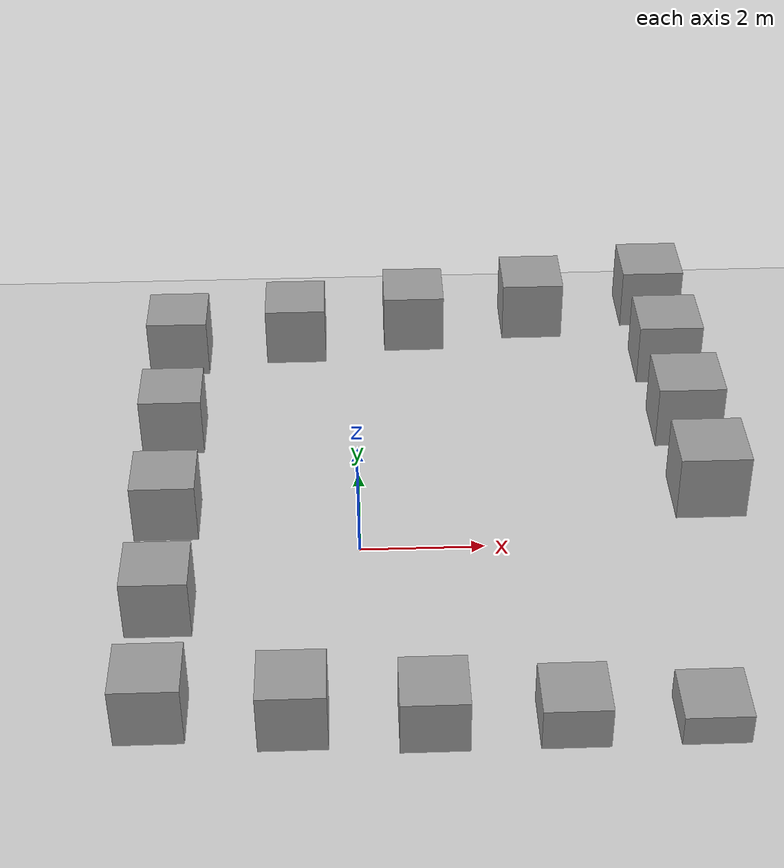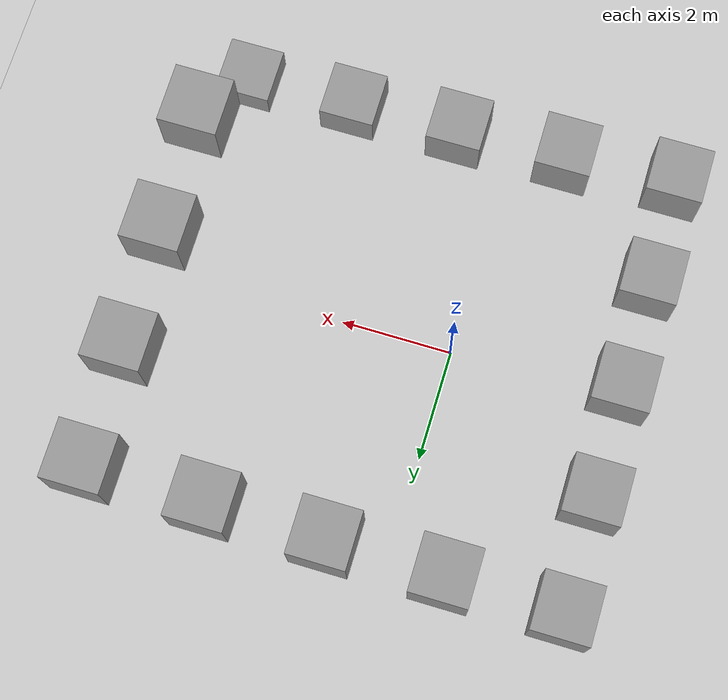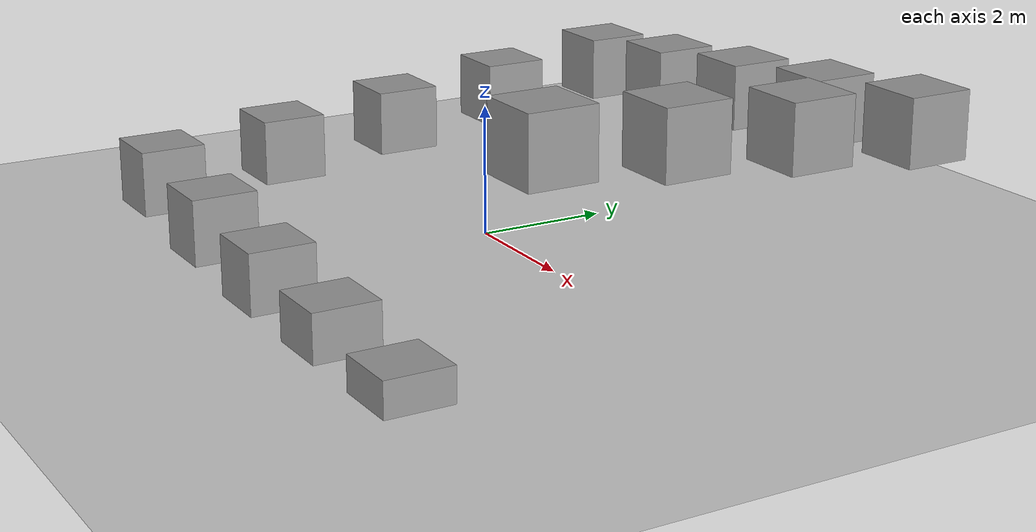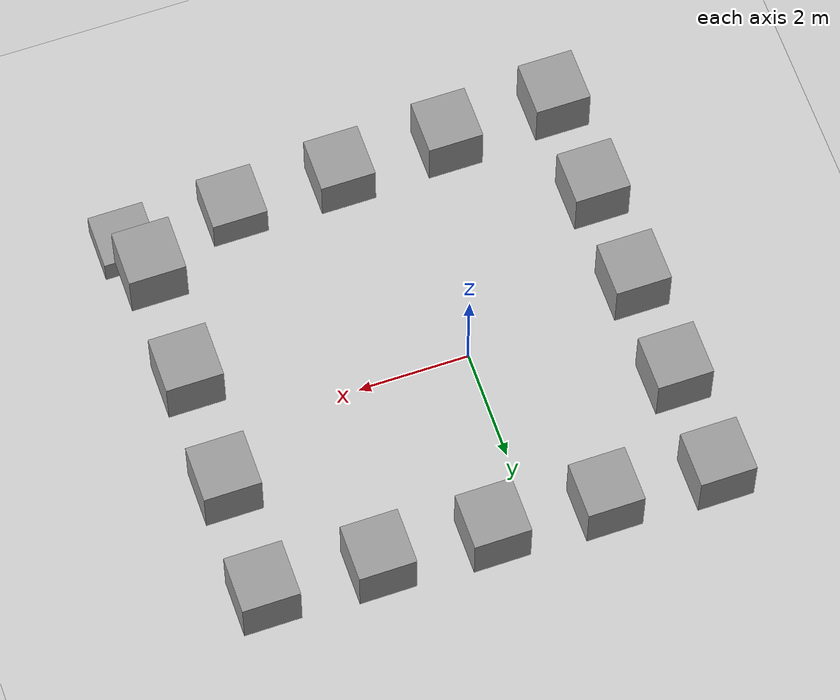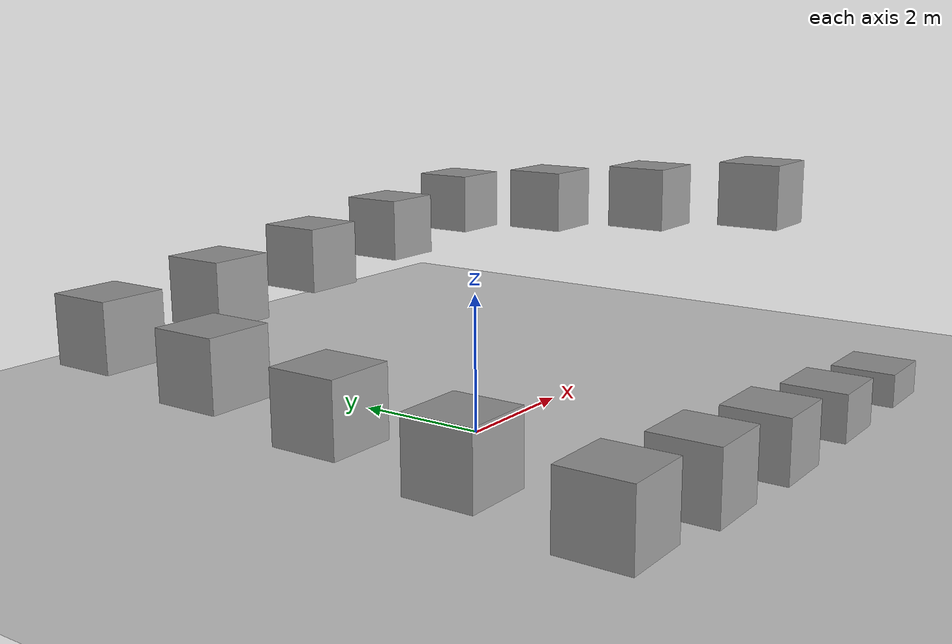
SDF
<sdf version="1.7">
 <world name="default">
  <light name="sun" type="directional">
   <pose>0 0 10 0 -0 0</pose>
   <diffuse>0.8 0.8 0.8 1</diffuse>
   <specular>0.2 0.2 0.2 1</specular>
   <attenuation>
    <range>1000</range>
    <constant>0.9</constant>
    <linear>0.01</linear>
    <quadratic>0.001</quadratic>
   </attenuation>
   <direction>-0.5 0.1 -0.9</direction>
   <spot><inner_angle>0</inner_angle><outer_angle>0</outer_angle><falloff>0</falloff></spot>
  </light>
  <model name="ground_plane">
   <static>1</static>
   <link name="link">
    <collision name="collision">
     <geometry><plane><normal>0 0 1</normal><size>100 100</size></plane></geometry>
     <surface><friction><ode><mu>100</mu><mu2>50</mu2></ode></friction></surface>
    </collision>
    <visual name="visual">
     <cast_shadows>0</cast_shadows>
     <geometry><plane><normal>0 0 1</normal><size>100 100</size></plane></geometry>
     <material>
      <script><uri>file://media/materials/scripts/gazebo.material</uri><name>Gazebo/Grey</name></script>
     </material>
    </visual>
   </link>
  </model>
  <gravity>0 0 -9.8</gravity>
  <magnetic_field>6e-06 2.3e-05 -4.2e-05</magnetic_field>
  <atmosphere type="adiabatic"/>
  <physics type="ode">
   <max_step_size>0.001</max_step_size>
   <real_time_factor>1</real_time_factor>
   <real_time_update_rate>1000</real_time_update_rate>
  </physics>
  <scene><ambient>0.4 0.4 0.4 1</ambient><background>0.7 0.7 0.7 1</background><shadows>1</shadows></scene>
  <spherical_coordinates>
   <surface_model>EARTH_WGS84</surface_model>
   <latitude_deg>0</latitude_deg>
   <longitude_deg>0</longitude_deg>
   <elevation>0</elevation>
   <heading_deg>0</heading_deg>
  </spherical_coordinates>
  <model name="unit_box">
   <pose>1 4 2 0 -0 0</pose>
   <link name="link">
    <inertial>
     <mass>1</mass>
     <inertia>
      <ixx>0.166667</ixx>
      <ixy>0</ixy>
      <ixz>0</ixz>
      <iyy>0.166667</iyy>
      <iyz>0</iyz>
      <izz>0.166667</izz>
     </inertia>
    </inertial>
    <collision name="collision"><geometry><box><size>1 1 1</size></box></geometry></collision>
    <visual name="visual">
     <geometry><box><size>1 1 1</size></box></geometry>
     <material>
      <script><name>Gazebo/Grey</name><uri>file://media/materials/scripts/gazebo.material</uri></script>
     </material>
    </visual>
   </link>
  </model>
  <model name="unit_box_clone">
   <pose>3 4 2.2 0 -0 0</pose>
   <link name="link">
    <inertial>
     <mass>1</mass>
     <inertia>
      <ixx>0.166667</ixx>
      <ixy>0</ixy>
      <ixz>0</ixz>
      <iyy>0.166667</iyy>
      <iyz>0</iyz>
      <izz>0.166667</izz>
     </inertia>
    </inertial>
    <collision name="collision"><geometry><box><size>1 1 1</size></box></geometry></collision>
    <visual name="visual">
     <geometry><box><size>1 1 1</size></box></geometry>
     <material>
      <script><name>Gazebo/Grey</name><uri>file://media/materials/scripts/gazebo.material</uri></script>
     </material>
    </visual>
   </link>
  </model>
  <model name="unit_box_clone_clone">
   <pose>-1 4 1.8 0 -0 0</pose>
   <link name="link">
    <inertial>
     <mass>1</mass>
     <inertia>
      <ixx>0.166667</ixx>
      <ixy>0</ixy>
      <ixz>0</ixz>
      <iyy>0.166667</iyy>
      <iyz>0</iyz>
      <izz>0.166667</izz>
     </inertia>
    </inertial>
    <collision name="collision"><geometry><box><size>1 1 1</size></box></geometry></collision>
    <visual name="visual">
     <geometry><box><size>1 1 1</size></box></geometry>
     <material>
      <script><name>Gazebo/Grey</name><uri>file://media/materials/scripts/gazebo.material</uri></script>
     </material>
    </visual>
   </link>
  </model>
  <model name="unit_box_clone_clone_clone">
   <pose>-3 4 1.6 0 -0 0</pose>
   <link name="link">
    <inertial>
     <mass>1</mass>
     <inertia>
      <ixx>0.166667</ixx>
      <ixy>0</ixy>
      <ixz>0</ixz>
      <iyy>0.166667</iyy>
      <iyz>0</iyz>
      <izz>0.166667</izz>
     </inertia>
    </inertial>
    <collision name="collision"><geometry><box><size>1 1 1</size></box></geometry></collision>
    <visual name="visual">
     <geometry><box><size>1 1 1</size></box></geometry>
     <material>
      <script><name>Gazebo/Grey</name><uri>file://media/materials/scripts/gazebo.material</uri></script>
     </material>
    </visual>
   </link>
  </model>
  <model name="unit_box_clone_clone_clone_clone">
   <pose>-3 2 1.4 0 -0 0</pose>
   <link name="link">
    <inertial>
     <mass>1</mass>
     <inertia>
      <ixx>0.166667</ixx>
      <ixy>0</ixy>
      <ixz>0</ixz>
      <iyy>0.166667</iyy>
      <iyz>0</iyz>
      <izz>0.166667</izz>
     </inertia>
    </inertial>
    <collision name="collision"><geometry><box><size>1 1 1</size></box></geometry></collision>
    <visual name="visual">
     <geometry><box><size>1 1 1</size></box></geometry>
     <material>
      <script><name>Gazebo/Grey</name><uri>file://media/materials/scripts/gazebo.material</uri></script>
     </material>
    </visual>
   </link>
  </model>
  <model name="unit_box_clone_clone_clone_clone_clone">
   <pose>-3 0 1.2 0 -0 0</pose>
   <link name="link">
    <inertial>
     <mass>1</mass>
     <inertia>
      <ixx>0.166667</ixx>
      <ixy>0</ixy>
      <ixz>0</ixz>
      <iyy>0.166667</iyy>
      <iyz>0</iyz>
      <izz>0.166667</izz>
     </inertia>
    </inertial>
    <collision name="collision"><geometry><box><size>1 1 1</size></box></geometry></collision>
    <visual name="visual">
     <geometry><box><size>1 1 1</size></box></geometry>
     <material>
      <script><name>Gazebo/Grey</name><uri>file://media/materials/scripts/gazebo.material</uri></script>
     </material>
    </visual>
   </link>
  </model>
  <model name="unit_box_clone_clone_clone_clone_clone_clone">
   <pose>-3 -2 1 0 -0 0</pose>
   <link name="link">
    <inertial>
     <mass>1</mass>
     <inertia>
      <ixx>0.166667</ixx>
      <ixy>0</ixy>
      <ixz>0</ixz>
      <iyy>0.166667</iyy>
      <iyz>0</iyz>
      <izz>0.166667</izz>
     </inertia>
    </inertial>
    <collision name="collision"><geometry><box><size>1 1 1</size></box></geometry></collision>
    <visual name="visual">
     <geometry><box><size>1 1 1</size></box></geometry>
     <material>
      <script><name>Gazebo/Grey</name><uri>file://media/materials/scripts/gazebo.material</uri></script>
     </material>
    </visual>
   </link>
  </model>
  <model name="unit_box_clone_clone_clone_clone_clone_clone_0">
   <pose>-3 -4 0.8 0 -0 0</pose>
   <link name="link">
    <inertial>
     <mass>1</mass>
     <inertia>
      <ixx>0.166667</ixx>
      <ixy>0</ixy>
      <ixz>0</ixz>
      <iyy>0.166667</iyy>
      <iyz>0</iyz>
      <izz>0.166667</izz>
     </inertia>
    </inertial>
    <collision name="collision"><geometry><box><size>1 1 1</size></box></geometry></collision>
    <visual name="visual">
     <geometry><box><size>1 1 1</size></box></geometry>
     <material>
      <script><name>Gazebo/Grey</name><uri>file://media/materials/scripts/gazebo.material</uri></script>
     </material>
    </visual>
   </link>
  </model>
  <model name="unit_box_clone_clone_clone_clone_clone_clone_1">
   <pose>-1 -4 0.6 0 -0 0</pose>
   <link name="link">
    <inertial>
     <mass>1</mass>
     <inertia>
      <ixx>0.166667</ixx>
      <ixy>0</ixy>
      <ixz>0</ixz>
      <iyy>0.166667</iyy>
      <iyz>0</iyz>
      <izz>0.166667</izz>
     </inertia>
    </inertial>
    <collision name="collision"><geometry><box><size>1 1 1</size></box></geometry></collision>
    <visual name="visual">
     <geometry><box><size>1 1 1</size></box></geometry>
     <material>
      <script><name>Gazebo/Grey</name><uri>file://media/materials/scripts/gazebo.material</uri></script>
     </material>
    </visual>
   </link>
  </model>
  <model name="unit_box_clone_clone_clone_clone_clone_clone_2">
   <pose>1 -4 0.4 0 -0 0</pose>
   <link name="link">
    <inertial>
     <mass>1</mass>
     <inertia>
      <ixx>0.166667</ixx>
      <ixy>0</ixy>
      <ixz>0</ixz>
      <iyy>0.166667</iyy>
      <iyz>0</iyz>
      <izz>0.166667</izz>
     </inertia>
    </inertial>
    <collision name="collision"><geometry><box><size>1 1 1</size></box></geometry></collision>
    <visual name="visual">
     <geometry><box><size>1 1 1</size></box></geometry>
     <material>
      <script><name>Gazebo/Grey</name><uri>file://media/materials/scripts/gazebo.material</uri></script>
     </material>
    </visual>
   </link>
  </model>
  <model name="unit_box_clone_clone_clone_clone_clone_clone_3_clone">
   <pose>5 -4 0 0 -0 0</pose>
   <link name="link">
    <inertial>
     <mass>1</mass>
     <inertia>
      <ixx>0.166667</ixx>
      <ixy>0</ixy>
      <ixz>0</ixz>
      <iyy>0.166667</iyy>
      <iyz>0</iyz>
      <izz>0.166667</izz>
     </inertia>
    </inertial>
    <collision name="collision"><geometry><box><size>1 1 1</size></box></geometry></collision>
    <visual name="visual">
     <geometry><box><size>1 1 1</size></box></geometry>
     <material>
      <script><name>Gazebo/Grey</name><uri>file://media/materials/scripts/gazebo.material</uri></script>
     </material>
    </visual>
   </link>
  </model>
  <model name="unit_box_clone_clone_clone_clone_clone_clone_3_clone_0">
   <pose>5 -2 3 0 -0 0</pose>
   <link name="link">
    <inertial>
     <mass>1</mass>
     <inertia>
      <ixx>0.166667</ixx>
      <ixy>0</ixy>
      <ixz>0</ixz>
      <iyy>0.166667</iyy>
      <iyz>0</iyz>
      <izz>0.166667</izz>
     </inertia>
    </inertial>
    <collision name="collision"><geometry><box><size>1 1 1</size></box></geometry></collision>
    <visual name="visual">
     <geometry><box><size>1 1 1</size></box></geometry>
     <material>
      <script><name>Gazebo/Grey</name><uri>file://media/materials/scripts/gazebo.material</uri></script>
     </material>
    </visual>
   </link>
  </model>
  <model name="unit_box_clone_clone_clone_clone_clone_clone_3_clone_1">
   <pose>5 0 2.8 0 -0 0</pose>
   <link name="link">
    <inertial>
     <mass>1</mass>
     <inertia>
      <ixx>0.166667</ixx>
      <ixy>0</ixy>
      <ixz>0</ixz>
      <iyy>0.166667</iyy>
      <iyz>0</iyz>
      <izz>0.166667</izz>
     </inertia>
    </inertial>
    <collision name="collision"><geometry><box><size>1 1 1</size></box></geometry></collision>
    <visual name="visual">
     <geometry><box><size>1 1 1</size></box></geometry>
     <material>
      <script><name>Gazebo/Grey</name><uri>file://media/materials/scripts/gazebo.material</uri></script>
     </material>
    </visual>
   </link>
  </model>
  <model name="unit_box_clone_clone_clone_clone_clone_clone_3_clone_2">
   <pose>5 2 2.6 0 -0 0</pose>
   <link name="link">
    <inertial>
     <mass>1</mass>
     <inertia>
      <ixx>0.166667</ixx>
      <ixy>0</ixy>
      <ixz>0</ixz>
      <iyy>0.166667</iyy>
      <iyz>0</iyz>
      <izz>0.166667</izz>
     </inertia>
    </inertial>
    <collision name="collision"><geometry><box><size>1 1 1</size></box></geometry></collision>
    <visual name="visual">
     <geometry><box><size>1 1 1</size></box></geometry>
     <material>
      <script><name>Gazebo/Grey</name><uri>file://media/materials/scripts/gazebo.material</uri></script>
     </material>
    </visual>
   </link>
  </model>
  <model name="unit_box_clone_clone_clone_clone_clone_clone_3_clone_3">
   <pose>5 4 2.4 0 -0 0</pose>
   <link name="link">
    <inertial>
     <mass>1</mass>
     <inertia>
      <ixx>0.166667</ixx>
      <ixy>0</ixy>
      <ixz>0</ixz>
      <iyy>0.166667</iyy>
      <iyz>0</iyz>
      <izz>0.166667</izz>
     </inertia>
    </inertial>
    <collision name="collision"><geometry><box><size>1 1 1</size></box></geometry></collision>
    <visual name="visual">
     <geometry><box><size>1 1 1</size></box></geometry>
     <material>
      <script><name>Gazebo/Grey</name><uri>file://media/materials/scripts/gazebo.material</uri></script>
     </material>
    </visual>
   </link>
  </model>
  <model name="unit_box_clone_clone_clone_clone_clone_clone_2_clone">
   <pose>3 -4 0.2 0 -0 0</pose>
   <link name="link">
    <inertial>
     <mass>1</mass>
     <inertia>
      <ixx>0.166667</ixx>
      <ixy>0</ixy>
      <ixz>0</ixz>
      <iyy>0.166667</iyy>
      <iyz>0</iyz>
      <izz>0.166667</izz>
     </inertia>
    </inertial>
    <collision name="collision"><geometry><box><size>1 1 1</size></box></geometry></collision>
    <visual name="visual">
     <geometry><box><size>1 1 1</size></box></geometry>
     <material>
      <script><name>Gazebo/Grey</name><uri>file://media/materials/scripts/gazebo.material</uri></script>
     </material>
    </visual>
   </link>
  </model>
 </world>
</sdf>
